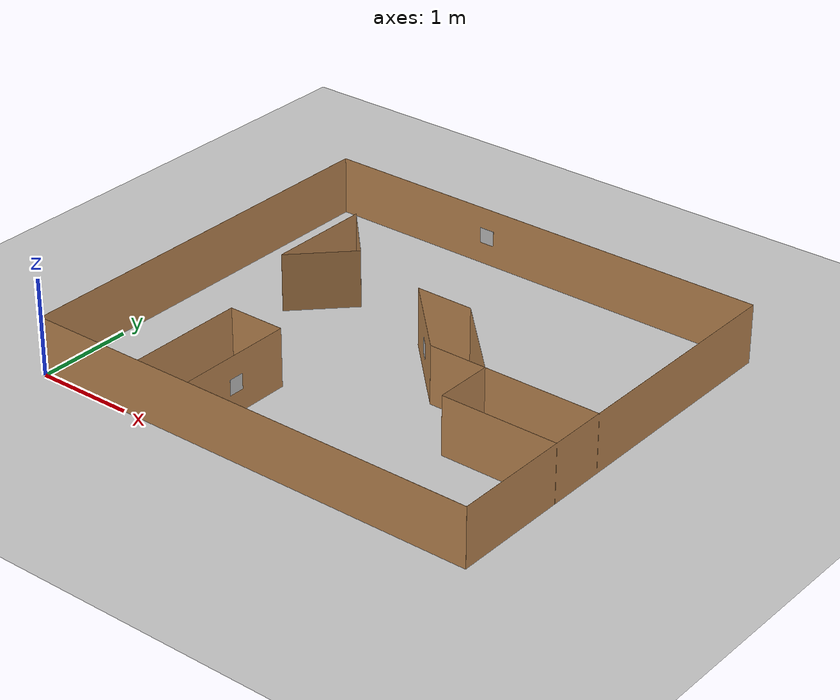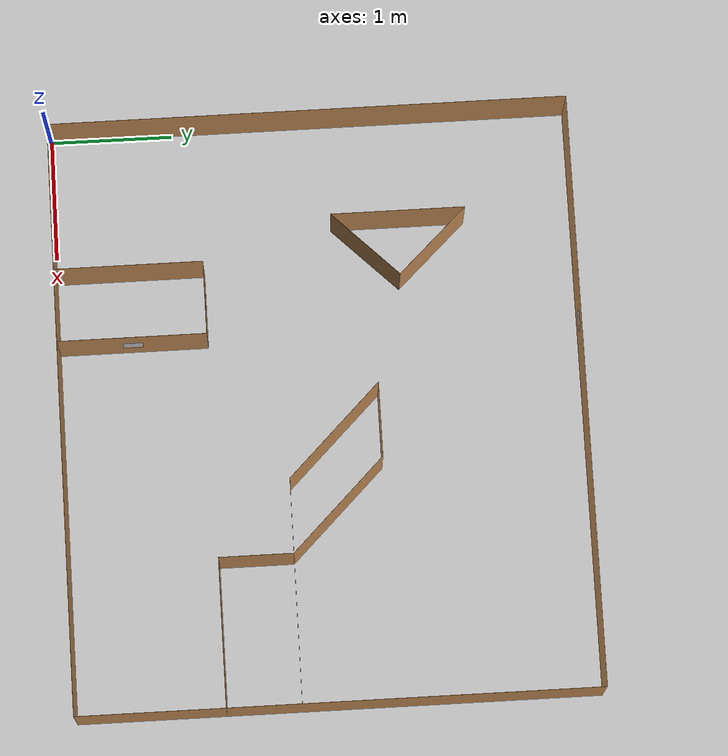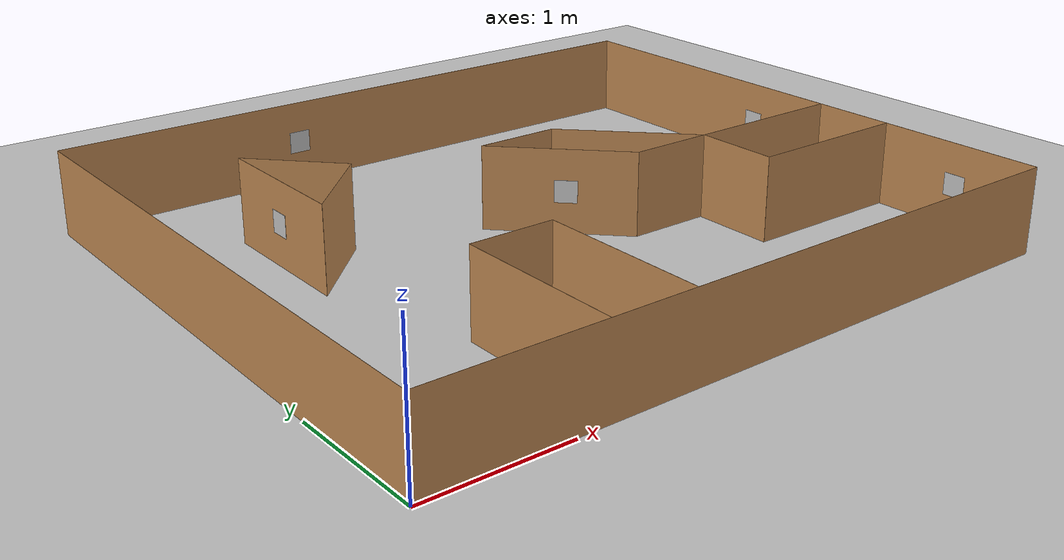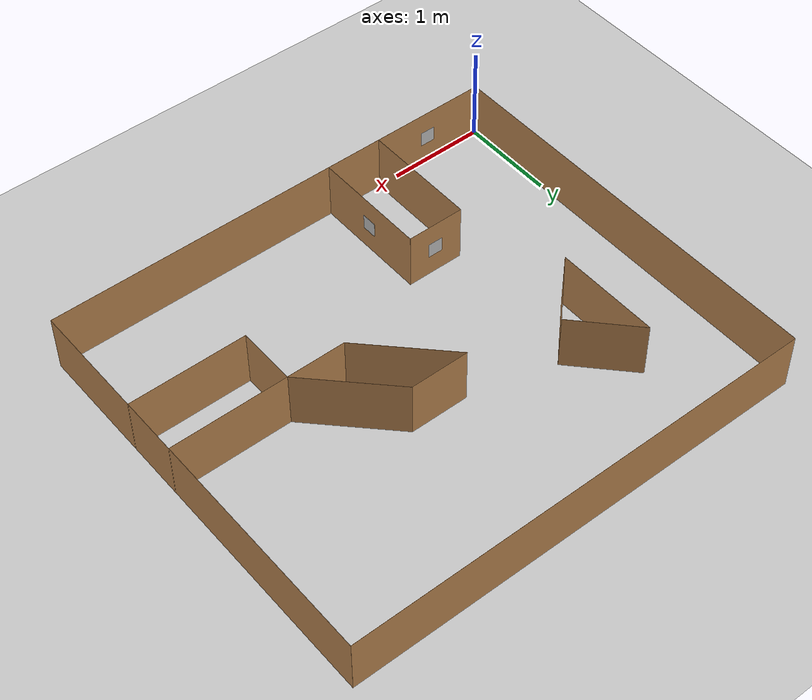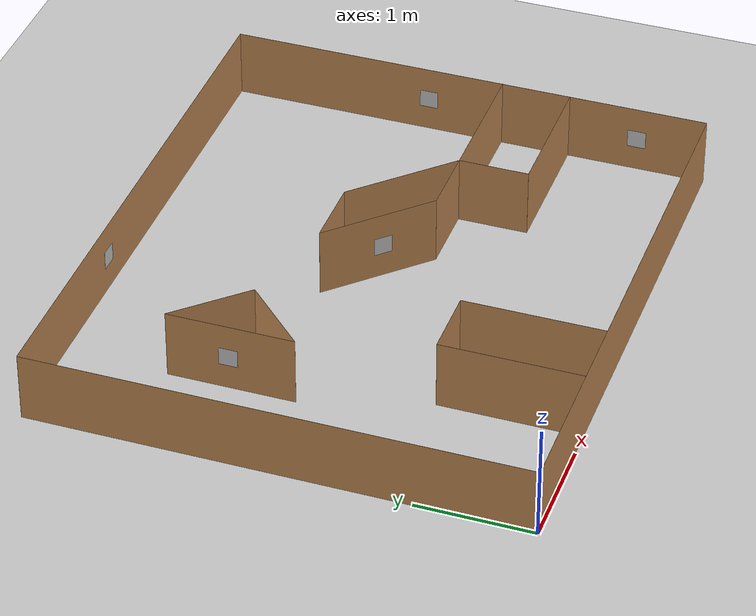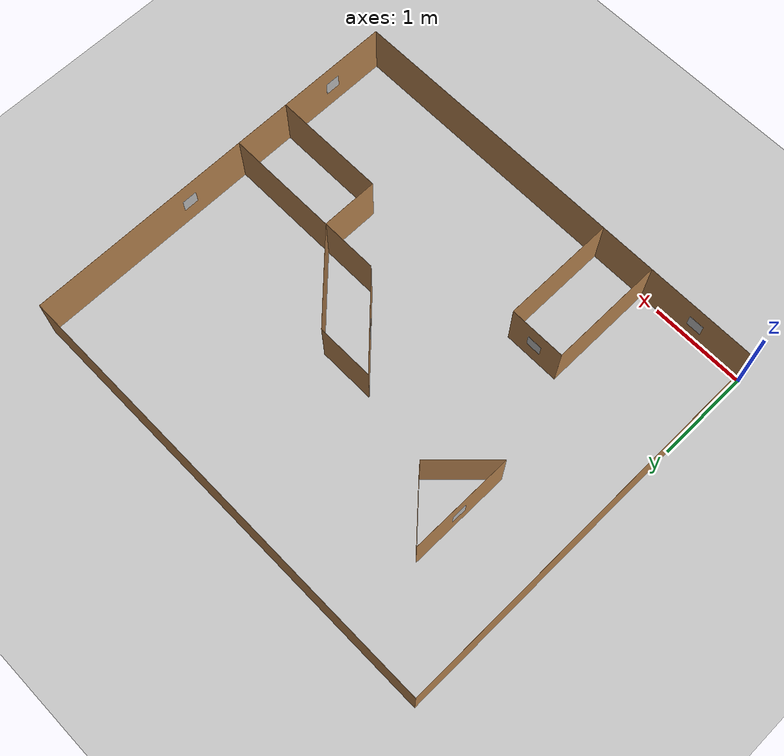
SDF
<sdf version="1.6">
 <world name="default">
  <light name="sun" type="directional">
   <pose>0 0 10 0 -0 0</pose>
   <diffuse>0.8 0.8 0.8 1</diffuse>
   <specular>0.1 0.1 0.1 1</specular>
   <attenuation>
    <range>1000</range>
    <constant>0.9</constant>
    <linear>0.01</linear>
    <quadratic>0.001</quadratic>
   </attenuation>
   <direction>-0.5 0.5 -1</direction>
  </light>
  <model name="ground_plane">
   <static>1</static>
   <link name="link">
    <collision name="collision">
     <geometry><plane><normal>0 0 1</normal><size>100 100</size></plane></geometry>
     <surface><friction><ode><mu>100</mu><mu2>50</mu2></ode></friction></surface>
    </collision>
    <visual name="visual">
     <cast_shadows>0</cast_shadows>
     <geometry><plane><normal>0 0 1</normal><size>100 100</size></plane></geometry>
     <material>
      <script><uri>file://media/materials/scripts/gazebo.material</uri><name>Gazebo/Grey</name></script>
     </material>
    </visual>
   </link>
  </model>
  <gravity>0 0 -9.8</gravity>
  <magnetic_field>6e-06 2.3e-05 -4.2e-05</magnetic_field>
  <atmosphere type="adiabatic"/>
  <physics name="default_physics" default="0" type="ode">
   <max_step_size>0.001</max_step_size>
   <real_time_factor>1</real_time_factor>
   <real_time_update_rate>1000</real_time_update_rate>
  </physics>
  <scene><ambient>0.4 0.4 0.4 1</ambient><background>0.7 0.7 0.7 1</background><shadows>1</shadows></scene>
  <spherical_coordinates>
   <surface_model>EARTH_WGS84</surface_model>
   <latitude_deg>0</latitude_deg>
   <longitude_deg>0</longitude_deg>
   <elevation>0</elevation>
   <heading_deg>0</heading_deg>
  </spherical_coordinates>
  <model name="ProjectMap">
   <pose>2.4365 2.1335 0 0 -0 0</pose>
   <link name="Wall_0">
    <collision name="Wall_0_Collision">
     <geometry><box><size>4.877 0.001 0.61</size></box></geometry>
     <pose>0 0 0.305 0 -0 0</pose>
    </collision>
    <visual name="Wall_0_Visual">
     <pose>0 0 0.305 0 -0 0</pose>
     <geometry><box><size>4.877 0.001 0.61</size></box></geometry>
     <material>
      <script><uri>file://media/materials/scripts/gazebo.material</uri><name>Gazebo/Wood</name></script>
      <ambient>1 1 1 1</ambient>
     </material>
     <meta><layer>0</layer></meta>
    </visual>
    <pose>-0.00125 -2.1335 0 0 -0 0</pose>
   </link>
   <link name="Wall_1">
    <collision name="Wall_1_Collision">
     <geometry><box><size>4.267 0.001 0.61</size></box></geometry>
     <pose>0 0 0.305 0 -0 0</pose>
    </collision>
    <visual name="Wall_1_Visual">
     <pose>0 0 0.305 0 -0 0</pose>
     <geometry><box><size>4.267 0.001 0.61</size></box></geometry>
     <material>
      <script><uri>file://media/materials/scripts/gazebo.material</uri><name>Gazebo/Wood</name></script>
      <ambient>1 1 1 1</ambient>
     </material>
     <meta><layer>0</layer></meta>
    </visual>
    <pose>2.43725 0 0 0 -0 1.5708</pose>
   </link>
   <link name="Wall_10">
    <collision name="Wall_10_Collision">
     <geometry><box><size>1.06847 0.001 0.61</size></box></geometry>
     <pose>0 0 0.305 0 -0 0</pose>
    </collision>
    <visual name="Wall_10_Visual">
     <pose>0 0 0.305 0 -0 0</pose>
     <geometry><box><size>1.06847 0.001 0.61</size></box></geometry>
     <material>
      <script><uri>file://media/materials/scripts/gazebo.material</uri><name>Gazebo/Wood</name></script>
      <ambient>1 1 1 1</ambient>
     </material>
     <meta><layer>0</layer></meta>
    </visual>
    <pose>0.23525 0.075 0 0 -0 2.34891</pose>
   </link>
   <link name="Wall_11">
    <collision name="Wall_11_Collision">
     <geometry><box><size>0.611 0.001 0.61</size></box></geometry>
     <pose>0 0 0.305 0 -0 0</pose>
    </collision>
    <visual name="Wall_11_Visual">
     <pose>0 0 0.305 0 -0 0</pose>
     <geometry><box><size>0.611 0.001 0.61</size></box></geometry>
     <material>
      <script><uri>file://media/materials/scripts/gazebo.material</uri><name>Gazebo/Wood</name></script>
      <ambient>1 1 1 1</ambient>
     </material>
     <meta><layer>0</layer></meta>
    </visual>
    <pose>0.16575 0.4555 0 0 -0 0</pose>
   </link>
   <link name="Wall_12">
    <collision name="Wall_12_Collision">
     <geometry><box><size>1.06847 0.001 0.61</size></box></geometry>
     <pose>0 0 0.305 0 -0 0</pose>
    </collision>
    <visual name="Wall_12_Visual">
     <pose>0 0 0.305 0 -0 0</pose>
     <geometry><box><size>1.06847 0.001 0.61</size></box></geometry>
     <material>
      <script><uri>file://media/materials/scripts/gazebo.material</uri><name>Gazebo/Wood</name></script>
      <ambient>1 1 1 1</ambient>
     </material>
     <meta><layer>0</layer></meta>
    </visual>
    <pose>0.84625 0.075 0 0 0 -0.792678</pose>
   </link>
   <link name="Wall_14">
    <collision name="Wall_14_Collision">
     <geometry><box><size>1.219 0.001 0.61</size></box></geometry>
     <pose>0 0 0.305 0 -0 0</pose>
    </collision>
    <visual name="Wall_14_Visual">
     <pose>0 0 0.305 0 -0 0</pose>
     <geometry><box><size>1.219 0.001 0.61</size></box></geometry>
     <material>
      <script><uri>file://media/materials/scripts/gazebo.material</uri><name>Gazebo/Wood</name></script>
      <ambient>1 1 1 1</ambient>
     </material>
     <meta><layer>0</layer></meta>
    </visual>
    <pose>-1.22075 -1.524 0 0 -0 1.5708</pose>
   </link>
   <link name="Wall_15">
    <collision name="Wall_15_Collision">
     <geometry><box><size>0.601 0.001 0.61</size></box></geometry>
     <pose>0 0 0.305 0 -0 0</pose>
    </collision>
    <visual name="Wall_15_Visual">
     <pose>0 0 0.305 0 -0 0</pose>
     <geometry><box><size>0.601 0.001 0.61</size></box></geometry>
     <material>
      <script><uri>file://media/materials/scripts/gazebo.material</uri><name>Gazebo/Wood</name></script>
      <ambient>1 1 1 1</ambient>
     </material>
     <meta><layer>0</layer></meta>
    </visual>
    <pose>-0.92025 -0.9145 0 0 -0 0</pose>
   </link>
   <link name="Wall_16">
    <collision name="Wall_16_Collision">
     <geometry><box><size>1.219 0.001 0.61</size></box></geometry>
     <pose>0 0 0.305 0 -0 0</pose>
    </collision>
    <visual name="Wall_16_Visual">
     <pose>0 0 0.305 0 -0 0</pose>
     <geometry><box><size>1.219 0.001 0.61</size></box></geometry>
     <material>
      <script><uri>file://media/materials/scripts/gazebo.material</uri><name>Gazebo/Wood</name></script>
      <ambient>1 1 1 1</ambient>
     </material>
     <meta><layer>0</layer></meta>
    </visual>
    <pose>-0.61975 -1.524 0 0 0 -1.5708</pose>
   </link>
   <link name="Wall_18">
    <collision name="Wall_18_Collision">
     <geometry><box><size>1.1 0.001 0.61</size></box></geometry>
     <pose>0 0 0.305 0 -0 0</pose>
    </collision>
    <visual name="Wall_18_Visual">
     <pose>0 0 0.305 0 -0 0</pose>
     <geometry><box><size>1.1 0.001 0.61</size></box></geometry>
     <material>
      <script><uri>file://media/materials/scripts/gazebo.material</uri><name>Gazebo/Wood</name></script>
      <ambient>1 1 1 1</ambient>
     </material>
     <meta><layer>0</layer></meta>
    </visual>
    <pose>-1.55475 0.6965 0 0 0 -1.5708</pose>
   </link>
   <link name="Wall_19">
    <collision name="Wall_19_Collision">
     <geometry><box><size>0.755211 0.001 0.61</size></box></geometry>
     <pose>0 0 0.305 0 -0 0</pose>
    </collision>
    <visual name="Wall_19_Visual">
     <pose>0 0 0.305 0 -0 0</pose>
     <geometry><box><size>0.755211 0.001 0.61</size></box></geometry>
     <material>
      <script><uri>file://media/materials/scripts/gazebo.material</uri><name>Gazebo/Wood</name></script>
      <ambient>1 1 1 1</ambient>
     </material>
     <meta><layer>0</layer></meta>
    </visual>
    <pose>-1.28975 0.4155 0 0 -0 0.792889</pose>
   </link>
   <link name="Wall_2">
    <collision name="Wall_2_Collision">
     <geometry><box><size>4.877 0.001 0.61</size></box></geometry>
     <pose>0 0 0.305 0 -0 0</pose>
    </collision>
    <visual name="Wall_2_Visual">
     <pose>0 0 0.305 0 -0 0</pose>
     <geometry><box><size>4.877 0.001 0.61</size></box></geometry>
     <material>
      <script><uri>file://media/materials/scripts/gazebo.material</uri><name>Gazebo/Wood</name></script>
      <ambient>1 1 1 1</ambient>
     </material>
     <meta><layer>0</layer></meta>
    </visual>
    <pose>-0.00125 2.1335 0 0 -0 3.14159</pose>
   </link>
   <link name="Wall_20">
    <collision name="Wall_20_Collision">
     <geometry><box><size>0.772492 0.001 0.61</size></box></geometry>
     <pose>0 0 0.305 0 -0 0</pose>
    </collision>
    <visual name="Wall_20_Visual">
     <pose>0 0 0.305 0 -0 0</pose>
     <geometry><box><size>0.772492 0.001 0.61</size></box></geometry>
     <material>
      <script><uri>file://media/materials/scripts/gazebo.material</uri><name>Gazebo/Wood</name></script>
      <ambient>1 1 1 1</ambient>
     </material>
     <meta><layer>0</layer></meta>
    </visual>
    <pose>-1.28975 0.9655 0 0 -0 2.3269</pose>
   </link>
   <link name="Wall_3">
    <collision name="Wall_3_Collision">
     <geometry><box><size>4.267 0.001 0.61</size></box></geometry>
     <pose>0 0 0.305 0 -0 0</pose>
    </collision>
    <visual name="Wall_3_Visual">
     <pose>0 0 0.305 0 -0 0</pose>
     <geometry><box><size>4.267 0.001 0.61</size></box></geometry>
     <material>
      <script><uri>file://media/materials/scripts/gazebo.material</uri><name>Gazebo/Wood</name></script>
      <ambient>1 1 1 1</ambient>
     </material>
     <meta><layer>0</layer></meta>
    </visual>
    <pose>-2.43975 0 0 0 0 -1.5708</pose>
   </link>
   <link name="Wall_5">
    <collision name="Wall_5_Collision">
     <geometry><box><size>1.219 0.001 0.61</size></box></geometry>
     <pose>0 0 0.305 0 -0 0</pose>
    </collision>
    <visual name="Wall_5_Visual">
     <pose>0 0 0.305 0 -0 0</pose>
     <geometry><box><size>1.219 0.001 0.61</size></box></geometry>
     <material>
      <script><uri>file://media/materials/scripts/gazebo.material</uri><name>Gazebo/Wood</name></script>
      <ambient>1 1 1 1</ambient>
     </material>
     <meta><layer>0</layer></meta>
    </visual>
    <pose>1.83075 -0.9145 0 0 -0 3.14159</pose>
   </link>
   <link name="Wall_6">
    <collision name="Wall_6_Collision">
     <geometry><box><size>0.609 0.001 0.61</size></box></geometry>
     <pose>0 0 0.305 0 -0 0</pose>
    </collision>
    <visual name="Wall_6_Visual">
     <pose>0 0 0.305 0 -0 0</pose>
     <geometry><box><size>0.609 0.001 0.61</size></box></geometry>
     <material>
      <script><uri>file://media/materials/scripts/gazebo.material</uri><name>Gazebo/Wood</name></script>
      <ambient>1 1 1 1</ambient>
     </material>
     <meta><layer>0</layer></meta>
    </visual>
    <pose>1.22125 -0.61 0 0 -0 1.5708</pose>
   </link>
   <link name="Wall_7">
    <collision name="Wall_7_Collision">
     <geometry><box><size>1.219 0.001 0.61</size></box></geometry>
     <pose>0 0 0.305 0 -0 0</pose>
    </collision>
    <visual name="Wall_7_Visual">
     <pose>0 0 0.305 0 -0 0</pose>
     <geometry><box><size>1.219 0.001 0.61</size></box></geometry>
     <material>
      <script><uri>file://media/materials/scripts/gazebo.material</uri><name>Gazebo/Wood</name></script>
      <ambient>1 1 1 1</ambient>
     </material>
     <meta><layer>0</layer></meta>
    </visual>
    <pose>1.83075 -0.3055 0 0 -0 0</pose>
   </link>
   <link name="Wall_9">
    <collision name="Wall_9_Collision">
     <geometry><box><size>0.611 0.001 0.61</size></box></geometry>
     <pose>0 0 0.305 0 -0 0</pose>
    </collision>
    <visual name="Wall_9_Visual">
     <pose>0 0 0.305 0 -0 0</pose>
     <geometry><box><size>0.611 0.001 0.61</size></box></geometry>
     <material>
      <script><uri>file://media/materials/scripts/gazebo.material</uri><name>Gazebo/Wood</name></script>
      <ambient>1 1 1 1</ambient>
     </material>
     <meta><layer>0</layer></meta>
    </visual>
    <pose>0.91575 -0.3055 0 0 -0 3.14159</pose>
   </link>
   <static>1</static>
  </model>
  <model name="Tag0">
   <static>1</static>
   <link name="link">
    <collision name="collision"><geometry><box><size>0.1615 0.001 0.1615</size></box></geometry></collision>
    <visual name="visual">
     <cast_shadows>0</cast_shadows>
     <geometry><box><size>0.1615 0.001 0.1615</size></box></geometry>
     <material>
      <script>
       <uri>model://Tag0/materials/scripts</uri>
       <uri>model://Tag0/materials/textures</uri>
       <name>vrc/Tag0</name>
      </script>
     </material>
    </visual>
   </link>
   <pose>4.873 0.61 0.3048 0 -0 1.5708</pose>
  </model>
  <model name="Tag1">
   <static>1</static>
   <link name="link">
    <collision name="collision"><geometry><box><size>0.1615 0.001 0.1615</size></box></geometry></collision>
    <visual name="visual">
     <cast_shadows>0</cast_shadows>
     <geometry><box><size>0.1615 0.001 0.1615</size></box></geometry>
     <material>
      <script>
       <uri>model://Tag1/materials/scripts</uri>
       <uri>model://Tag1/materials/textures</uri>
       <name>vrc/Tag1</name>
      </script>
     </material>
    </visual>
   </link>
   <pose>4.873 2.5 0.3048 0 -0 1.5708</pose>
  </model>
  <model name="Tag2">
   <static>1</static>
   <link name="link">
    <collision name="collision"><geometry><box><size>0.1615 0.001 0.1615</size></box></geometry></collision>
    <visual name="visual">
     <cast_shadows>0</cast_shadows>
     <geometry><box><size>0.1615 0.001 0.1615</size></box></geometry>
     <material>
      <script>
       <uri>model://Tag2/materials/scripts</uri>
       <uri>model://Tag2/materials/textures</uri>
       <name>vrc/Tag2</name>
      </script>
     </material>
    </visual>
   </link>
   <pose>0.61 0.002 0.3048 0 -0 0</pose>
  </model>
  <model name="Tag3">
   <static>1</static>
   <link name="link">
    <collision name="collision"><geometry><box><size>0.1615 0.001 0.1615</size></box></geometry></collision>
    <visual name="visual">
     <cast_shadows>0</cast_shadows>
     <geometry><box><size>0.1615 0.001 0.1615</size></box></geometry>
     <material>
      <script>
       <uri>model://Tag3/materials/scripts</uri>
       <uri>model://Tag3/materials/textures</uri>
       <name>vrc/Tag3</name>
      </script>
     </material>
    </visual>
   </link>
   <pose>1.52 1.22 0.3048 0 -0 0</pose>
  </model>
  <model name="Tag4">
   <static>1</static>
   <link name="link">
    <collision name="collision"><geometry><box><size>0.1615 0.001 0.1615</size></box></geometry></collision>
    <visual name="visual">
     <cast_shadows>0</cast_shadows>
     <geometry><box><size>0.1615 0.001 0.1615</size></box></geometry>
     <material>
      <script>
       <uri>model://Tag4/materials/scripts</uri>
       <uri>model://Tag4/materials/textures</uri>
       <name>vrc/Tag4</name>
      </script>
     </material>
    </visual>
   </link>
   <pose>1.82 0.61 0.3048 0 -0 1.5708</pose>
  </model>
  <model name="Tag5">
   <static>1</static>
   <link name="link">
    <collision name="collision"><geometry><box><size>0.1615 0.001 0.1615</size></box></geometry></collision>
    <visual name="visual">
     <cast_shadows>0</cast_shadows>
     <geometry><box><size>0.1615 0.001 0.1615</size></box></geometry>
     <material>
      <script>
       <uri>model://Tag5/materials/scripts</uri>
       <uri>model://Tag5/materials/textures</uri>
       <name>vrc/Tag5</name>
      </script>
     </material>
    </visual>
   </link>
   <pose>1.81693 4.266 0.3048 0 -0 0</pose>
  </model>
  <model name="Tag6">
   <static>1</static>
   <link name="link">
    <collision name="collision"><geometry><box><size>0.1615 0.001 0.1615</size></box></geometry></collision>
    <visual name="visual">
     <cast_shadows>0</cast_shadows>
     <geometry><box><size>0.1615 0.001 0.1615</size></box></geometry>
     <material>
      <script>
       <uri>model://Tag6/materials/scripts</uri>
       <uri>model://Tag6/materials/textures</uri>
       <name>vrc/Tag6</name>
      </script>
     </material>
    </visual>
   </link>
   <pose>0.88 2.85 0.3048 0 -0 1.5708</pose>
  </model>
  <model name="Tag7">
   <static>1</static>
   <link name="link">
    <collision name="collision"><geometry><box><size>0.1615 0.001 0.1615</size></box></geometry></collision>
    <visual name="visual">
     <cast_shadows>0</cast_shadows>
     <geometry><box><size>0.1615 0.001 0.1615</size></box></geometry>
     <material>
      <script>
       <uri>model://Tag7/materials/scripts</uri>
       <uri>model://Tag7/materials/textures</uri>
       <name>vrc/Tag7</name>
      </script>
     </material>
    </visual>
   </link>
   <pose>2.7 2.175 0.3048 0 0 -0.79</pose>
  </model>
 </world>
</sdf>
